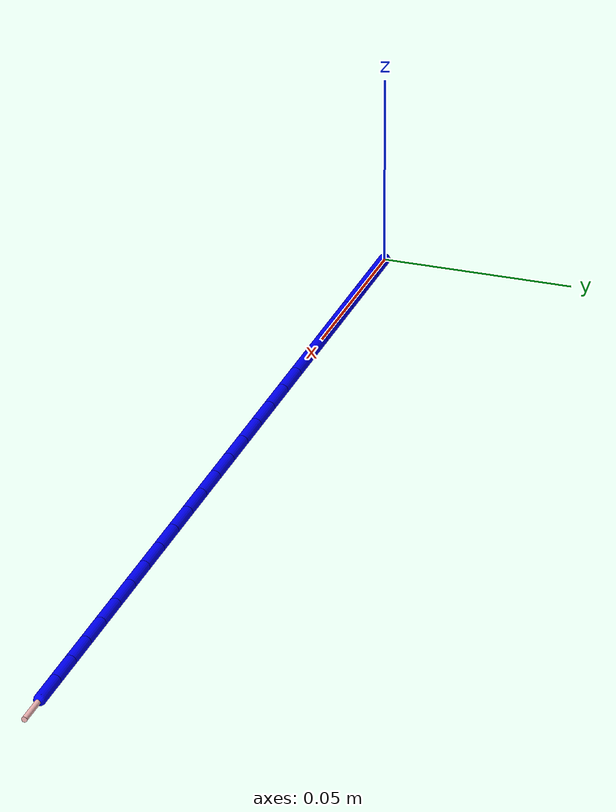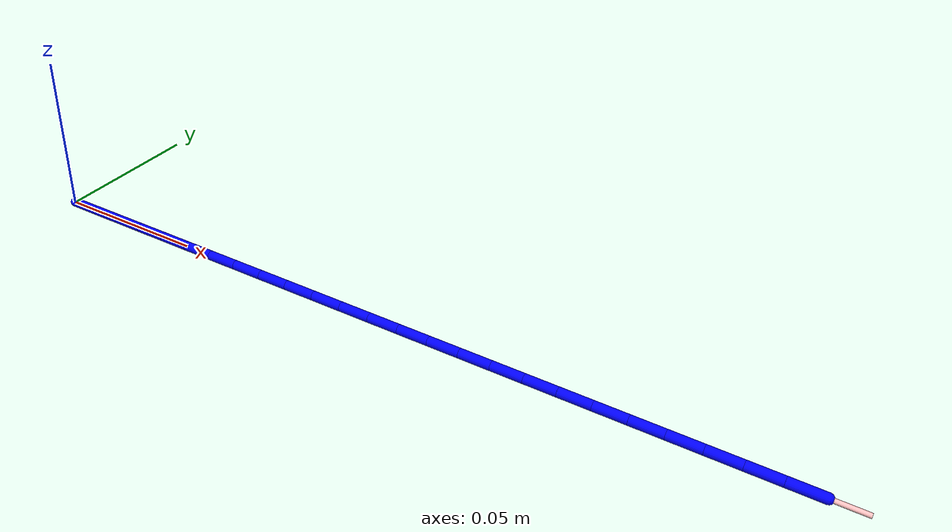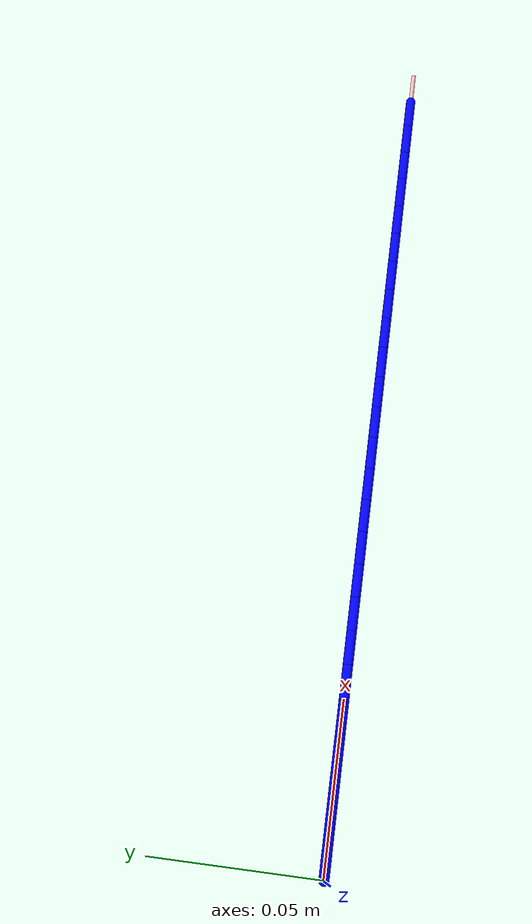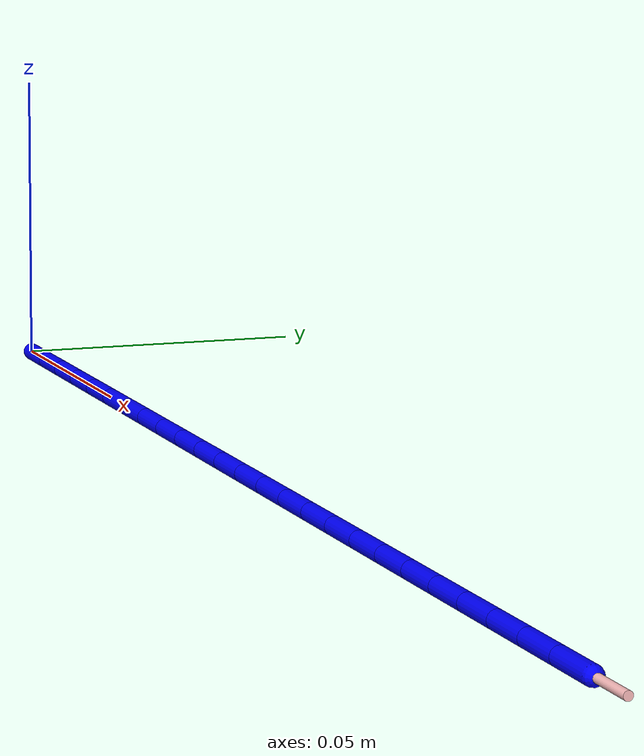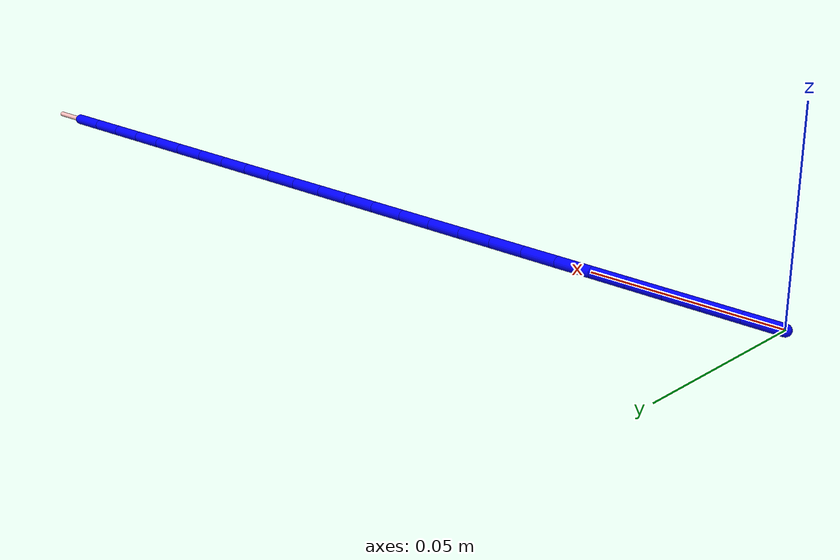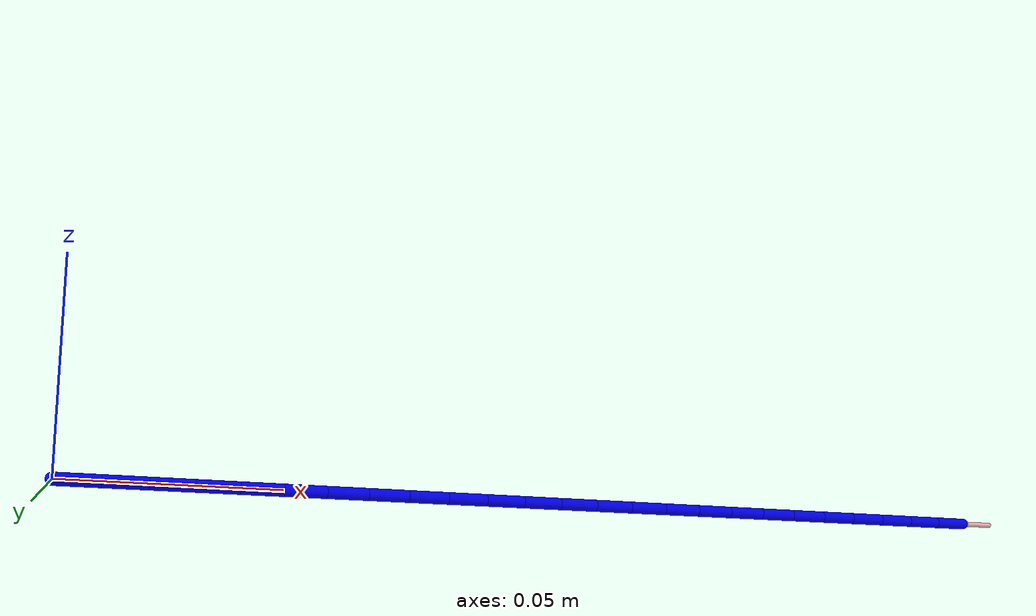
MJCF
<mujoco model="cable">

  <compiler angle="radian" autolimits="true"/>

  <asset>
    <material name="blue_cable" rgba="0 0 1 1" specular="0.3" shininess="0.4"/>
    <material name="copper" rgba="1 0.752941176470588 0.752941176470588 1" specular="0.6" shininess="0.6"/>
  </asset>

  <default>
    <default class="cable_link">
      <geom type="capsule" size="0.0015" material="blue_cable" density="2200"
            condim="4" friction="0.8 0.005 0.0001" solref="0.01 1" solimp="0.99 0.99 0.01" priority="1"/>
      <joint type="ball" damping="0.001" armature="0.00005"/>
    </default>
    <default class="connector">
      <geom type="cylinder" size="0.0007" material="copper" density="8900"/>
    </default>
  </default>

  <contact>
    <exclude body1="B0" body2="B1"/>
    <exclude body1="B1" body2="B2"/>
    <exclude body1="B2" body2="B3"/>
    <exclude body1="B3" body2="B4"/>
    <exclude body1="B4" body2="B5"/>
    <exclude body1="B5" body2="B6"/>
    <exclude body1="B6" body2="B7"/>
    <exclude body1="B7" body2="B8"/>
    <exclude body1="B8" body2="B9"/>
    <exclude body1="B9" body2="B10"/>
    <exclude body1="B10" body2="B11"/>
    <exclude body1="B11" body2="B12"/>
    <exclude body1="B12" body2="B13"/>
    <exclude body1="B13" body2="B14"/>
    <exclude body1="B14" body2="B15"/>
    <exclude body1="B15" body2="B16"/>
    <exclude body1="B16" body2="B17"/>
    <exclude body1="B17" body2="B18"/>
    <exclude body1="B18" body2="B19"/>
    <exclude body1="B19" body2="B20"/>
    <exclude body1="B20" body2="B21"/>
    <exclude body1="B21" body2="B22"/>
    <exclude body1="B22" body2="B23"/>
    <exclude body1="B23" body2="B24"/>
    <exclude body1="B24" body2="connector"/>
  </contact>

  <worldbody>
    <!-- Segment 0: rigidly attached to whatever frame this file gets
         attached to (no joint = fixed to parent) -->
    <body name="B0" pos="0 0 0">
      <!--freejoint name="floating_base" /-->
      <geom class="cable_link" fromto="0 0 0  0.01 0 0"/>

      <body name="B1" pos="0.01 0 0">
        <joint class="cable_link"/>
        <geom class="cable_link" fromto="0 0 0  0.01 0 0"/>

        <body name="B2" pos="0.01 0 0">
          <joint class="cable_link"/>
          <geom class="cable_link" fromto="0 0 0  0.01 0 0"/>

          <body name="B3" pos="0.01 0 0">
            <joint class="cable_link"/>
            <geom class="cable_link" fromto="0 0 0  0.01 0 0"/>

            <body name="B4" pos="0.01 0 0">
              <joint class="cable_link"/>
              <geom class="cable_link" fromto="0 0 0  0.01 0 0"/>

              <body name="B5" pos="0.01 0 0">
                <joint class="cable_link"/>
                <geom class="cable_link" fromto="0 0 0  0.01 0 0"/>

                <body name="B6" pos="0.01 0 0">
                  <joint class="cable_link"/>
                  <geom class="cable_link" fromto="0 0 0  0.01 0 0"/>

                  <body name="B7" pos="0.01 0 0">
                    <joint class="cable_link"/>
                    <geom class="cable_link" fromto="0 0 0  0.01 0 0"/>

                    <body name="B8" pos="0.01 0 0">
                      <joint class="cable_link"/>
                      <geom class="cable_link" fromto="0 0 0  0.01 0 0"/>

                      <body name="B9" pos="0.01 0 0">
                        <joint class="cable_link"/>
                        <geom class="cable_link" fromto="0 0 0  0.01 0 0"/>

                        <body name="B10" pos="0.01 0 0">
                          <joint class="cable_link"/>
                          <geom class="cable_link" fromto="0 0 0  0.01 0 0"/>

                          <body name="B11" pos="0.01 0 0">
                            <joint class="cable_link"/>
                            <geom class="cable_link" fromto="0 0 0  0.01 0 0"/>

                            <body name="B12" pos="0.01 0 0">
                              <joint class="cable_link"/>
                              <geom class="cable_link" fromto="0 0 0  0.01 0 0"/>

                              <body name="B13" pos="0.01 0 0">
                                <joint class="cable_link"/>
                                <geom class="cable_link" fromto="0 0 0  0.01 0 0"/>

                                <body name="B14" pos="0.01 0 0">
                                  <joint class="cable_link"/>
                                  <geom class="cable_link" fromto="0 0 0  0.01 0 0"/>

                                  <body name="B15" pos="0.01 0 0">
                                    <joint class="cable_link"/>
                                    <geom class="cable_link" fromto="0 0 0  0.01 0 0"/>

                                    <body name="B16" pos="0.01 0 0">
                                      <joint class="cable_link"/>
                                      <geom class="cable_link" fromto="0 0 0  0.01 0 0"/>

                                      <body name="B17" pos="0.01 0 0">
                                        <joint class="cable_link"/>
                                        <geom class="cable_link" fromto="0 0 0  0.01 0 0"/>

                                        <body name="B18" pos="0.01 0 0">
                                          <joint class="cable_link"/>
                                          <geom class="cable_link" fromto="0 0 0  0.01 0 0"/>

                                          <body name="B19" pos="0.01 0 0">
                                            <joint class="cable_link"/>
                                            <geom class="cable_link" fromto="0 0 0  0.01 0 0"/>

                                            <body name="B20" pos="0.01 0 0">
                                              <joint class="cable_link"/>
                                              <geom class="cable_link" fromto="0 0 0  0.01 0 0"/>

                                              <body name="B21" pos="0.01 0 0">
                                                <geom class="cable_link" fromto="0 0 0  0.01 0 0"/>

                                                <body name="B22" pos="0.01 0 0">
                                                  <geom class="cable_link" fromto="0 0 0  0.01 0 0"/>

                                                  <body name="B23" pos="0.01 0 0">
                                                    <geom class="cable_link" fromto="0 0 0  0.01 0 0"/>

                                                    <body name="B24" pos="0.01 0 0">
                                                      <geom class="cable_link" fromto="0 0 0  0.01 0 0"/>

                                                      <!-- Front tip: mini connector cylinder,
                                                           rigidly (fixed) attached, no joint -->
                                                      <body name="connector" pos="0.01 0 0">
                                                        <geom class="connector" fromto="0 0 0  0.01 0 0"/>
                                                      </body>

                                                    </body>
                                                  </body>
                                                </body>
                                              </body>
                                            </body>
                                          </body>
                                        </body>
                                      </body>
                                    </body>
                                  </body>
                                </body>
                              </body>
                            </body>
                          </body>
                        </body>
                      </body>
                    </body>
                  </body>
                </body>
              </body>
            </body>
          </body>
        </body>
      </body>
    </body>
  </worldbody>

</mujoco>
